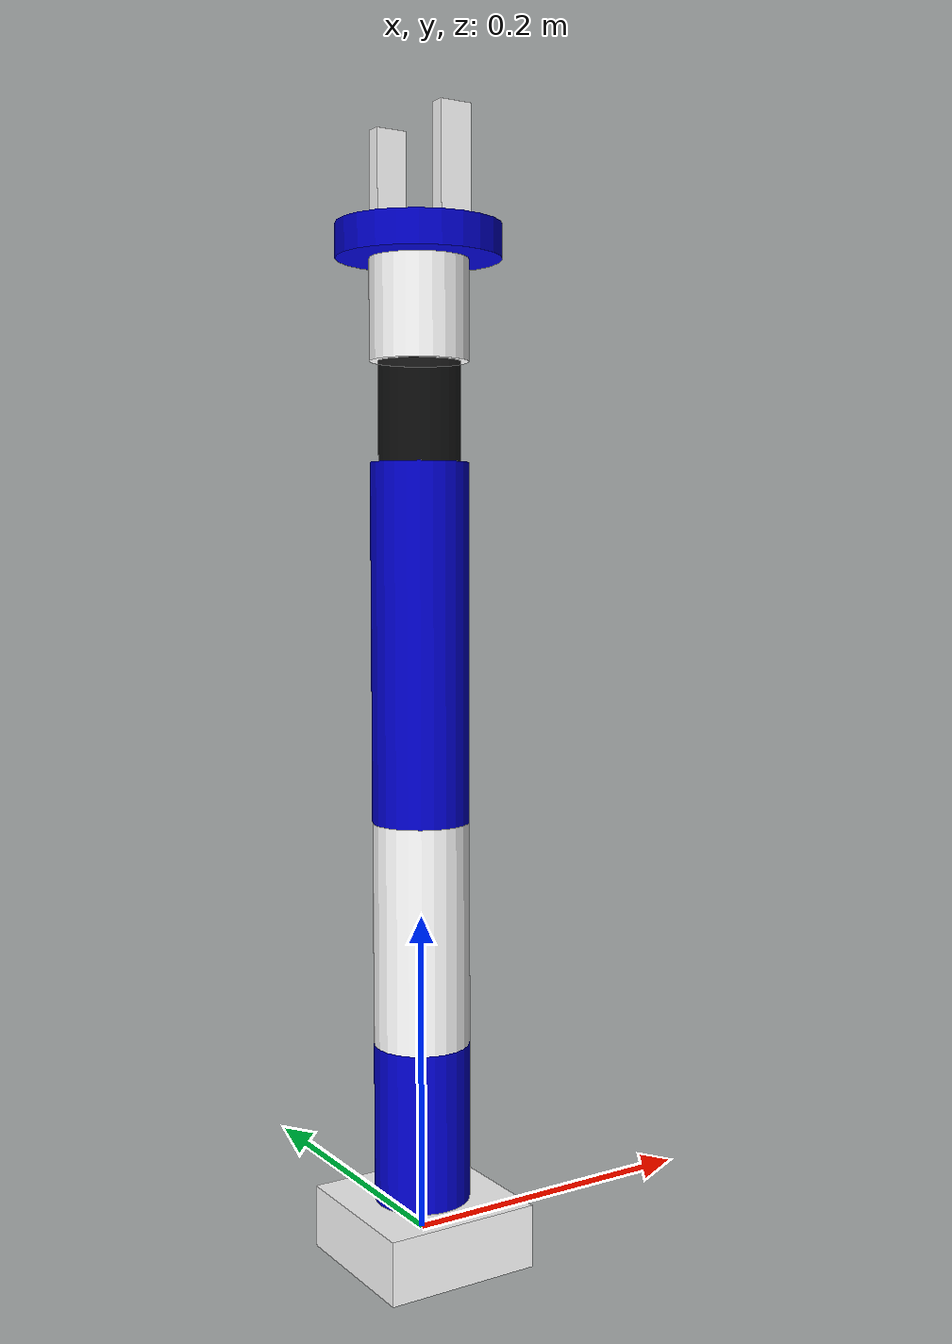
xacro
<?xml version="1.0"?>
<robot xmlns:xacro="http://www.ros.org/wiki/xacro" name="six_arm">
    <xacro:arg name="initial_positions_file" default="initial_positions.yaml" />

    <!-- Import six_arm urdf file -->
    <xacro:include filename="$(find mybot_description)/urdf/arm.xacro" />

    <!-- Import control_xacro -->
    <xacro:include filename="six_arm.ros2_control.xacro" />

    <xacro:six_arm_ros2_control name="FakeSystem" initial_positions_file="$(arg initial_positions_file)"/>

</robot>

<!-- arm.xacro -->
<robot name="six_arm"
    xmlns:xacro="http://www.ros.org/wiki/xacro">
    <!-- 定义一些颜色 -->
    <material name="Blue">
        <color rgba="0 0 0.8 1" />
    </material>

    <material name="Black">
        <color rgba="0 0 0 0.85" />
    </material>

    <material name="White">
        <color rgba="1 1 1 1" />
    </material>

    <!-- 常量 -->
    <xacro:property name="M_PI" value="3.1415926" />

    <!-- 连杆半径和长度 -->
    <!-- link1 -->
    <xacro:property name="link1_rad" value="0.03" />
    <xacro:property name="link1_len" value="0.1" />
    <!-- link2 -->
    <xacro:property name="link2_rad" value="0.03" />
    <xacro:property name="link2_len" value="0.14" />
    <!-- link3 -->
    <xacro:property name="link3_rad" value="0.03" />
    <xacro:property name="link3_len" value="0.22" />
    <!-- link4 -->
    <xacro:property name="link4_rad" value="0.025" />
    <xacro:property name="link4_len" value="0.06" />
    <!-- link5 -->
    <xacro:property name="link5_rad" value="0.03" />
    <xacro:property name="link5_len" value="0.06" />
    <!-- link6 -->
    <xacro:property name="link6_rad" value="0.05" />
    <xacro:property name="link6_len" value="0.02" />
    <!-- 夹爪 长宽高-->
    <!-- gripper -->
    <xacro:property name="gripper_l" value="0.08" />
    <xacro:property name="gripper_w" value="0.01" />
    <xacro:property name="gripper_h" value="0.02" />
    <!-- 夹爪安装距离参数0~1 -->
    <xacro:property name="gripper_offset" value="0.75" />
    <xacro:property name="gripper_offset_h" value="0.002" />
    <!-- 底座长宽高 -->
    <!-- base -->
    <xacro:property name="base_l" value="0.1" />
    <xacro:property name="base_w" value="0.1" />
    <xacro:property name="base_h" value="0.04" />

    <!-- 惯性矩阵 -->
    <xacro:macro name="inertial_matrix" params="m">
        <inertial>
            <mass value="${m}" />
            <inertia ixx="0.0001" ixy="0" ixz="0" iyy="0.0001" iyz="0" izz="0.0001" />
        </inertial>
    </xacro:macro>

    <!-- Macro for inertia matrix -->
    <xacro:macro name="sphere_inertial_matrix" params="m r">
        <inertial>
            <mass value="${m}" />
            <inertia ixx="${2*m*r*r/5}" ixy="0" ixz="0"
                iyy="${2*m*r*r/5}" iyz="0"
                izz="${2*m*r*r/5}" />
        </inertial>
    </xacro:macro>

    <xacro:macro name="cylinder_inertial_matrix" params="m r h">
        <inertial>
            <mass value="${m}" />
            <inertia ixx="${m*(3*r*r+h*h)/12}" ixy="0" ixz="0"
                iyy="${m*(3*r*r+h*h)/12}" iyz="0"
                izz="${m*r*r/2}" />
        </inertial>
    </xacro:macro>

    <xacro:macro name="box_inertial_matrix" params="m l w h">
        <inertial>
            <mass value="${m}" />
            <inertia ixx="${m*(h*h + l*l)/12}" ixy="0" ixz="0"
                iyy="${m*(w*w + l*l)/12}" iyz="0"
                izz="${m*(w*w + h*h)/12}" />
        </inertial>
    </xacro:macro>

    <!-- 底座 -->
    <link name="arm_base_link">
        <visual>
            <origin xyz="0 0 0" rpy="0 0 0" />
            <geometry>
                <box size="${base_l} ${base_w} ${base_h}" />
            </geometry>
            <material name="White" />
        </visual>
        <collision>
            <geometry>
                <box size="${base_l} ${base_w} ${base_h}" />
            </geometry>
        </collision>
        <xacro:inertial_matrix m="1" />
    </link>

    <!-- joint1 -->
    <joint name="joint1" type="revolute">
        <parent link="arm_base_link" />
        <child link="link1" />
        <origin xyz="0 0 ${base_h / 2 + link1_len / 2}" rpy="0 0 0" />
        <axis xyz="0 0 1" />
        <limit lower="-3.14" upper="3.14" effort="300" velocity="1.0" />
        <joint_properties damping="50" friction="1" />
    </joint>

    <!-- link1 -->
    <link name="link1">
        <visual>
            <geometry>
                <cylinder radius="${link1_rad}" length="${link1_len}" />
            </geometry>
            <material name="Blue" />
        </visual>
        <collision>
            <geometry>
                <cylinder radius="${link1_rad}" length="${link1_len}" />
            </geometry>
        </collision>
        <xacro:inertial_matrix m="0.1" />
    </link>

    <!-- link2 -->
    <link name="link2">
        <visual>
            <origin xyz="0 0 ${link2_len/2}" rpy="0 0 0" />
            <geometry>
                <cylinder radius="${link2_rad}" length="${link2_len}" />
            </geometry>
            <material name="White" />
        </visual>
        <collision>
            <origin xyz="0 0 ${link2_len/2}" rpy="0 0 0" />
            <geometry>
                <cylinder radius="${link2_rad}" length="${link2_len}" />
            </geometry>
        </collision>
        <xacro:inertial_matrix m="0.1" />
    </link>

    <!-- joint2 -->
    <joint name="joint2" type="revolute">
        <parent link="link1" />
        <child link="link2" />
        <origin xyz="0 0 ${link1_len/2}" rpy="0 0 0" />
        <axis xyz="0 1 0" />
        <limit effort="300" velocity="1.0" lower="-2.35" upper="2.35" />
        <joint_properties damping="50" friction="1" />
    </joint>

    <!-- link3 -->
    <link name="link3">
        <visual>
            <origin xyz="0 0 ${link3_len/2}" rpy="0 0 0" />
            <geometry>
                <cylinder radius="${link3_rad}" length="${link3_len}" />
            </geometry>
            <material name="Blue" />
        </visual>
        <collision>
            <origin xyz="0 0 ${link3_len/2}" rpy="0 0 0" />
            <geometry>
                <cylinder radius="${link3_rad}" length="${link3_len}" />
            </geometry>
        </collision>
        <xacro:inertial_matrix m="0.1" />
    </link>

    <!-- joint3 -->
    <joint name="joint3" type="revolute">
        <parent link="link2" />
        <child link="link3" />
        <origin xyz="0 0 ${link2_len}" rpy="0 0 0" />
        <axis xyz="0 1 0" />
        <limit effort="300" velocity="1.0" lower="-2.62" upper="2.62" />

        <joint_properties damping="50" friction="1" />
    </joint>

    <!-- link4 -->
    <link name="link4">
        <visual>
            <origin xyz="0 0 ${link4_len/2}" rpy="0 0 0" />
            <geometry>
                <cylinder radius="${link4_rad}" length="${link4_len}" />
            </geometry>
            <material name="Black" />
        </visual>
        <collision>
            <origin xyz="0 0 ${link4_len/2}" rpy="0 0 0" />
            <geometry>
                <cylinder radius="${link4_rad}" length="${link4_len}" />
            </geometry>
        </collision>
        <xacro:inertial_matrix m="0.1" />
    </link>
    <!-- joint4 -->
    <joint name="joint4" type="revolute">
        <parent link="link3" />
        <child link="link4" />
        <origin xyz="0 0 ${link3_len}" rpy="0 0 0" />
        <axis xyz="0 0 1" />
        <limit lower="-3.14" upper="3.14" effort="300" velocity="1.0" />
        <joint_properties damping="50" friction="1" />
    </joint>

    <!-- link5 -->
    <link name="link5">
        <visual>
            <origin xyz="0 0 ${link5_len/2}" rpy="0 0 0" />
            <geometry>
                <cylinder radius="${link5_rad}" length="${link5_len}" />
            </geometry>
            <material name="White" />
        </visual>
        <collision>
            <origin xyz="0 0 ${link5_len/2}" rpy="0 0 0" />
            <geometry>
                <cylinder radius="${link5_rad}" length="${link5_len}" />
            </geometry>
        </collision>
        <xacro:inertial_matrix m="0.1" />
    </link>

    <!-- joint5 -->
    <joint name="joint5" type="revolute">
        <parent link="link4" />
        <child link="link5" />
        <origin xyz="0 0 ${link4_len}" rpy="0 0 0" />
        <axis xyz="0 -1 0" />
        <limit effort="300" velocity="1.0" lower="-2.35" upper="2.35" />

        <joint_properties damping="50" friction="1" />
    </joint>

    <!-- link6 -->
    <link name="link6">
        <visual>
            <origin xyz="0 0 ${link6_len/2}" rpy="0 0 0" />
            <geometry>
                <cylinder radius="${link6_rad}" length="${link6_len}" />
            </geometry>
            <material name="Blue" />
        </visual>
        <collision>
            <origin xyz="0 0 ${link6_len/2}" rpy="0 0 0" />
            <geometry>
                <cylinder radius="${link6_rad}" length="${link6_len}" />
            </geometry>
        </collision>
        <xacro:inertial_matrix m="0.1" />
    </link>

    <!-- joint6 -->
    <joint name="joint6" type="revolute">
        <parent link="link5" />
        <child link="link6" />
        <origin xyz="0 0 ${link5_len}" rpy="0 0 0" />
        <axis xyz="0 0 1" />
        <limit lower="-3.14" upper="3.14" effort="300" velocity="1.0" />
        <joint_properties damping="50" friction="1" />
    </joint>

    <!-- 夹爪 -->
    <xacro:macro name="gripper_finger_link" params="num">
        <link name="gripper_finger_link${num}">
            <visual>
                <geometry>
                    <box size="${gripper_l} ${gripper_w} ${gripper_h}" />
                </geometry>
                <material name="White" />
            </visual>
            <collision>
                <geometry>
                    <box size="${gripper_l} ${gripper_w} ${gripper_h}" />
                </geometry>
            </collision>
            <xacro:inertial_matrix m="0.01" />
        </link>
    </xacro:macro>

    <xacro:gripper_finger_link num="1" />
    <xacro:gripper_finger_link num="2" />

    <joint name="finger_joint1" type="prismatic">
        <parent link="link6" />
        <child link="gripper_finger_link1" />
        <origin xyz="0 -${link6_rad *gripper_offset} ${gripper_h*2+gripper_offset_h}"
            rpy="0 ${M_PI/2} 0" />
        <axis xyz="0 1 0" />
        <limit effort="100" lower="0" upper="${link6_rad+gripper_w}" velocity="1.0" />
        <dynamics damping="50" friction="1" />
    </joint>

    <!-- Was fixed → looked permanently half-closed; both fingers open together. -->
    <joint name="finger_joint2" type="prismatic">
        <parent link="link6" />
        <child link="gripper_finger_link2" />
        <origin xyz="0 ${link6_rad *gripper_offset} ${gripper_h*2+gripper_offset_h}"
            rpy="0 ${M_PI/2} 0" />
        <axis xyz="0 -1 0" />
        <limit effort="100" lower="0" upper="${link6_rad+gripper_w}" velocity="1.0" />
        <dynamics damping="50" friction="1" />
    </joint>

    <!-- Grasping frame -->
    <link name="grasping_frame" />

    <joint name="grasping_frame_joint" type="fixed">
        <parent link="link6" />
        <child link="grasping_frame" />
        <origin xyz="0 0 0" rpy="0 0 0" />
    </joint>
</robot>
